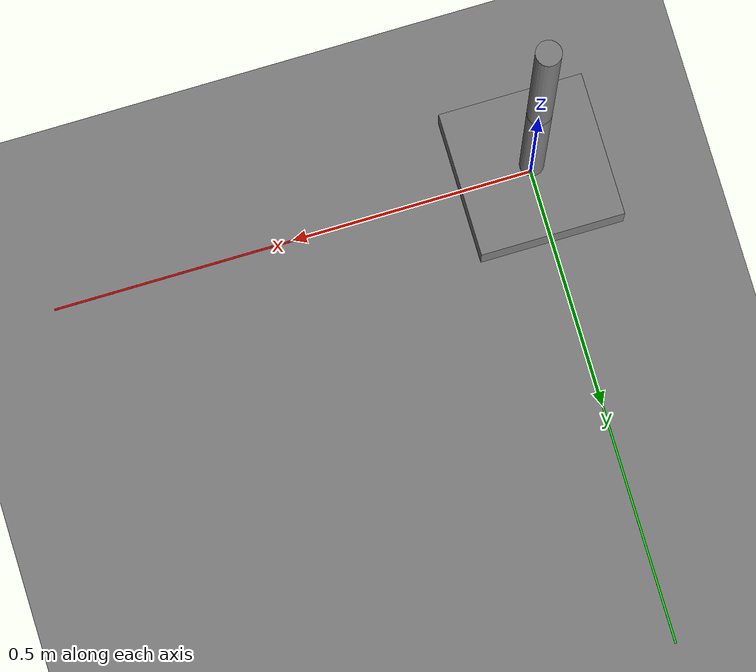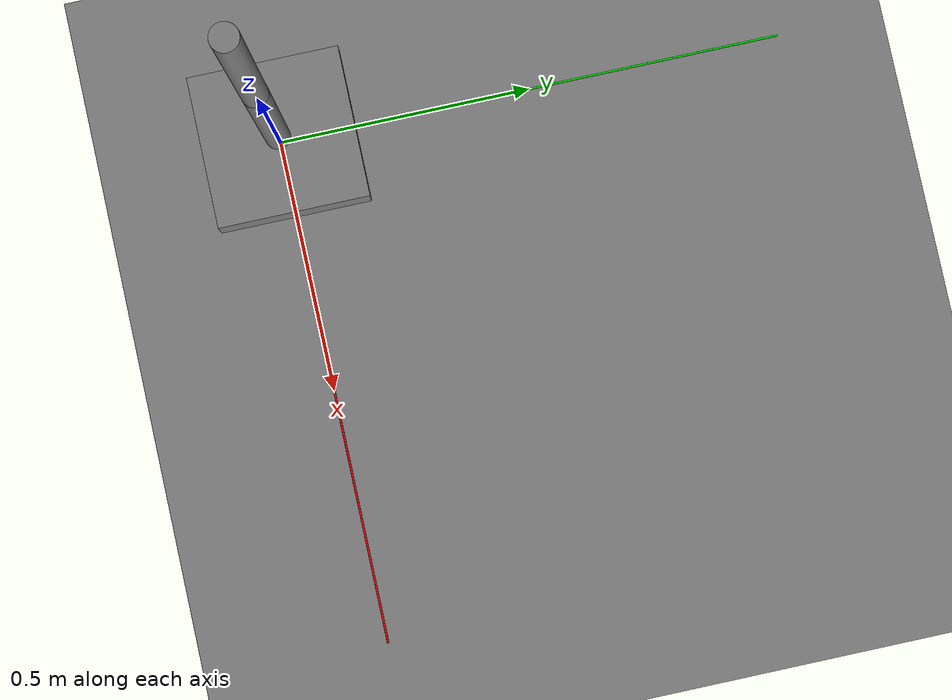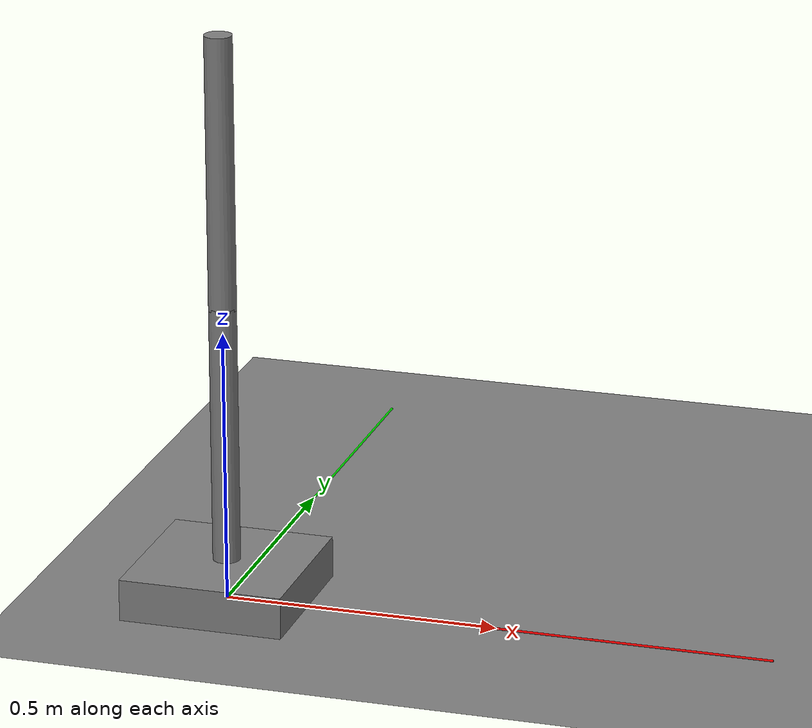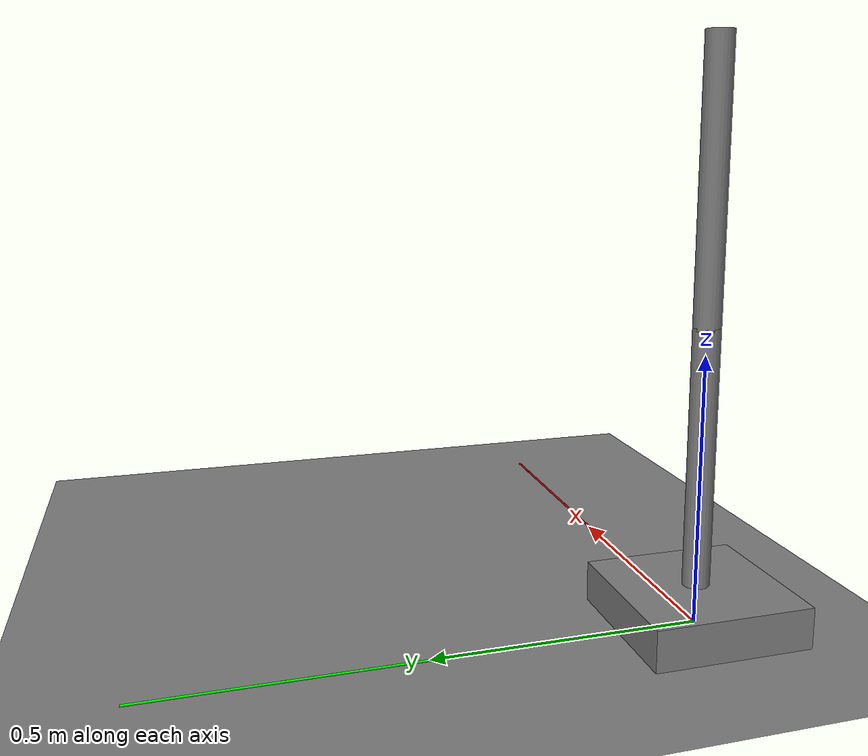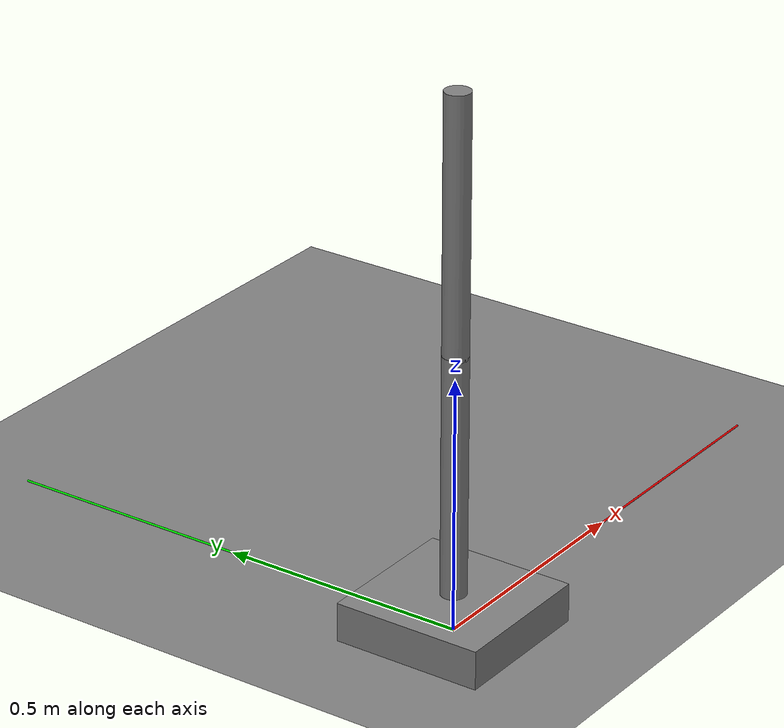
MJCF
<mujoco model="dummy">

    <default>
        <geom contype="0" conaffinity="0"/>
    </default>

    <asset>
        <texture name="grid" type="2d" builtin="checker" width="512" height="512" rgb1="0 0 0" rgb2="1 1 1" />
        <material name="grid_mat" texture="grid" texrepeat="10 10" reflectance="0.2" />
    </asset>

    <worldbody>
        <geom name="origin_marker" type="sphere" size="0.01" rgba="1 0 0 1" pos="0 0 0"/>
        <geom name="ground" type="plane" pos="0 0 0" size="2 2 0.1" material="grid_mat" xyaxes="1 0 0 0 1 0" />

        <geom name="x_axis" type="cylinder" fromto="0 0 0 1 0 0" size="0.002" rgba="1 0 0 1"/>
        <geom name="y_axis" type="cylinder" fromto="0 0 0 0 1 0" size="0.002" rgba="0 1 0 1"/>
        <geom name="z_axis" type="cylinder" fromto="0 0 0 0 0 1" size="0.002" rgba="0 0 1 1"/>

        <body name="base" pos="0 0 0.025">
            <geom type="box" size="0.15 0.15 0.05"/>
            <body name="link1" pos="0 0 0.275">
                <geom type="cylinder" size="0.025 0.25"/>
                <joint name="joint_1" type="hinge" pos="0 0 0" axis="0 0 1" limited="true" range="-80 180"/>
                <body name="link2" pos="0 0 0.495">
                    <geom type="cylinder" size="0.025 0.25"/>
                    <joint name="joint_2" type="hinge" pos="0 0 -0.25" axis="0 1 0" limited="true" range="-80 180"/>
                </body>
            </body>
        </body>
    </worldbody>

    <actuator>
        <position name="joint_1" ctrllimited="true" kp="1" kv="0.15" joint="joint_1" ctrlrange="-1.57 3.14"/>
        <position name="joint_2" ctrllimited="true" kp="1" kv="0.15" joint="joint_2" ctrlrange="-1.57 1.57"/>

    </actuator>

    <contact>
        <exclude body1="link1" body2="link2"/>
        <exclude body1="base" body2="link1"/>
        <exclude body1="base" body2="link2"/>
    </contact>
</mujoco>
